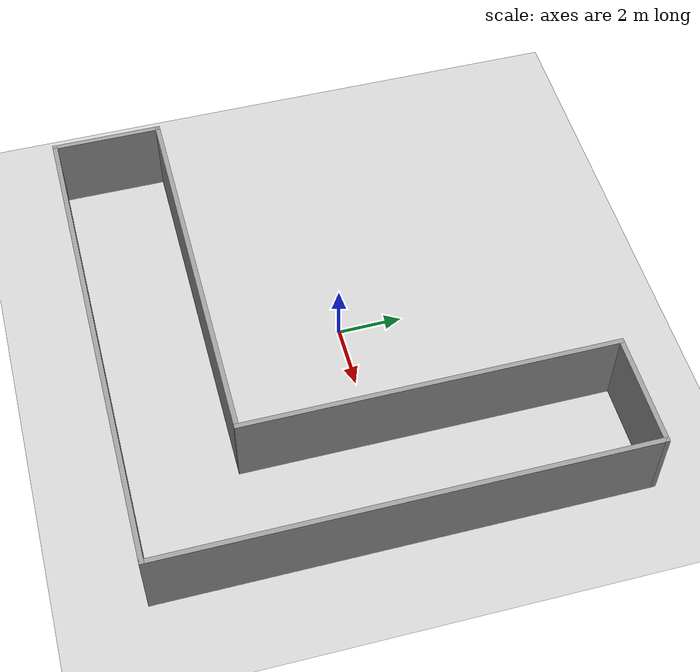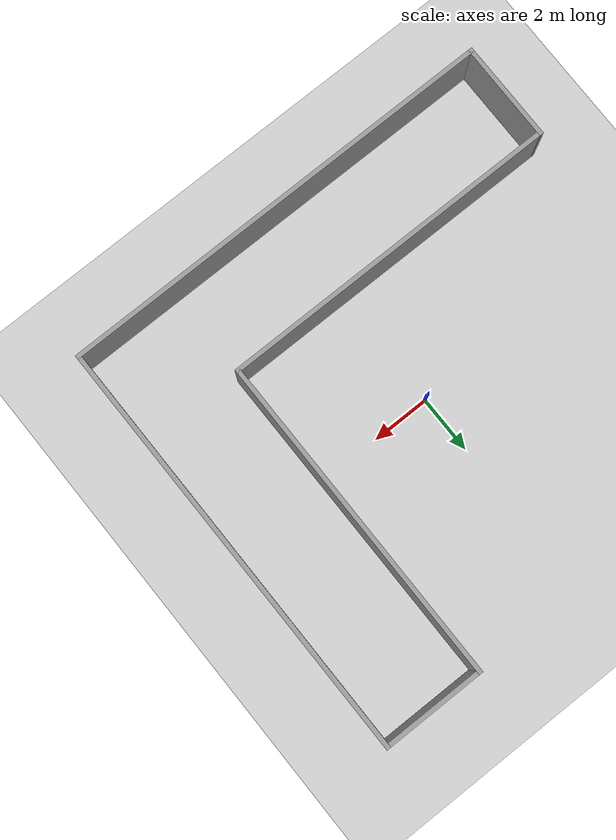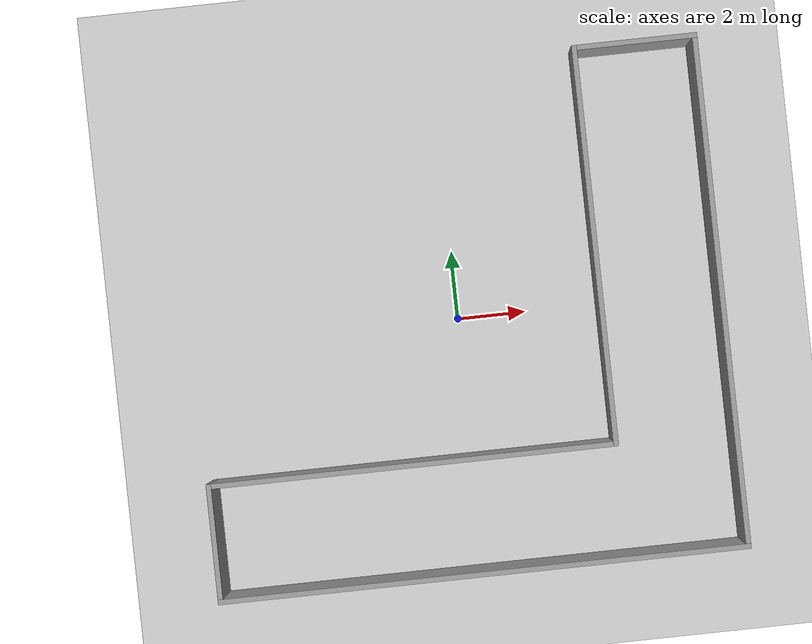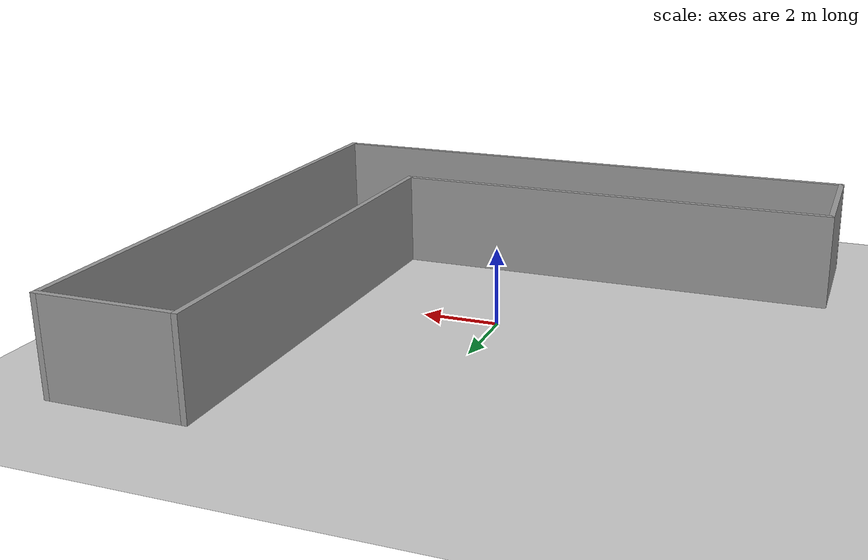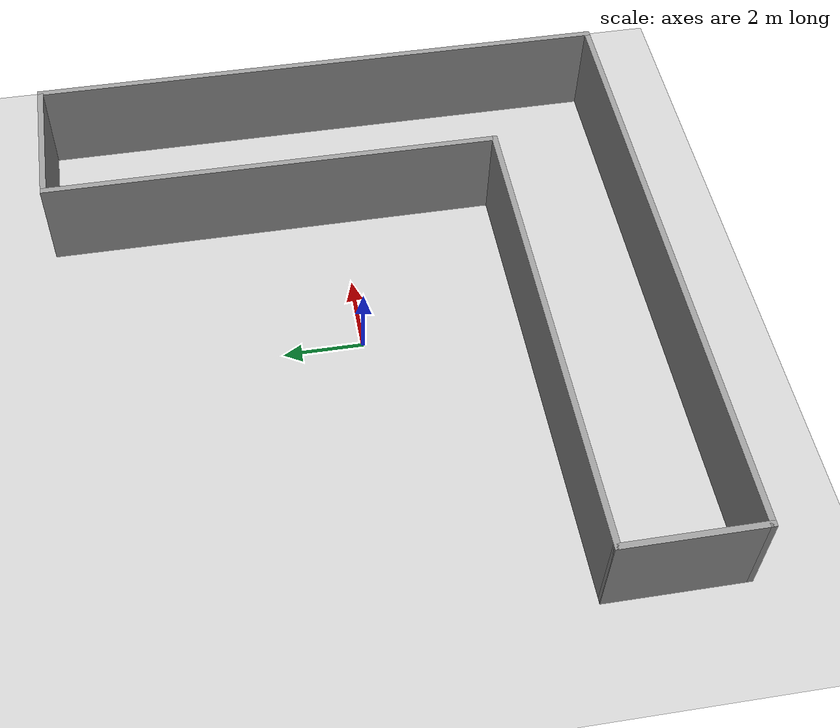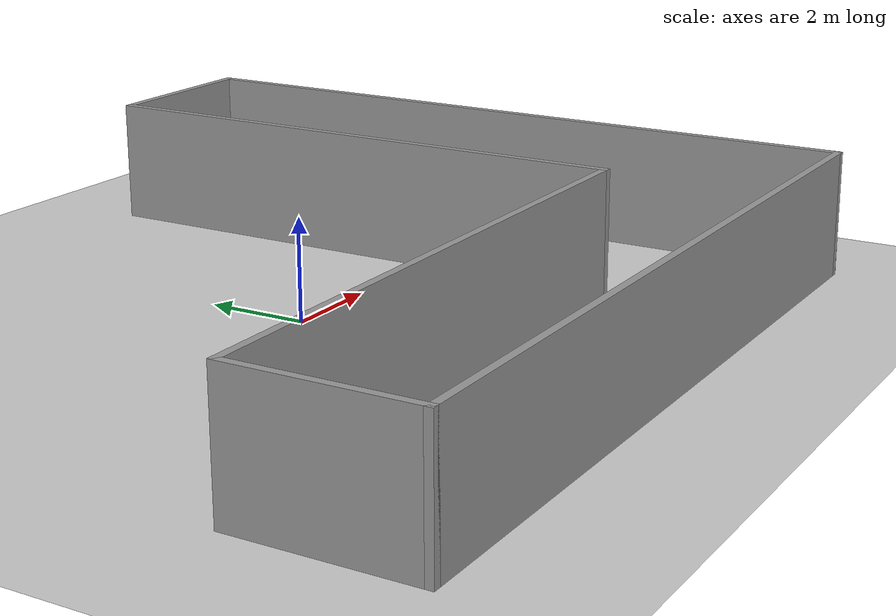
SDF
<sdf version="1.6">
 <world name="default">
  <light name="sun" type="directional">
   <pose>0 0 10 0 -0 0</pose>
   <diffuse>0.8 0.8 0.8 1</diffuse>
   <specular>0.2 0.2 0.2 1</specular>
   <attenuation>
    <range>1000</range>
    <constant>0.9</constant>
    <linear>0.01</linear>
    <quadratic>0.001</quadratic>
   </attenuation>
   <direction>-0.5 0.1 -0.9</direction>
  </light>
  <model name="ground_plane">
   <static>1</static>
   <link name="link">
    <collision name="collision">
     <geometry><plane><normal>0 0 1</normal><size>100 100</size></plane></geometry>
     <surface>
      <contact><collide_bitmask>65535</collide_bitmask></contact>
      <friction><ode><mu>100</mu><mu2>50</mu2></ode></friction>
     </surface>
    </collision>
    <visual name="visual">
     <cast_shadows>0</cast_shadows>
     <geometry><plane><normal>0 0 1</normal><size>100 100</size></plane></geometry>
     <material>
      <script><uri>file://media/materials/scripts/gazebo.material</uri><name>Gazebo/Grey</name></script>
     </material>
    </visual>
   </link>
  </model>
  <gravity>0 0 -9.8</gravity>
  <magnetic_field>6e-06 2.3e-05 -4.2e-05</magnetic_field>
  <atmosphere type="adiabatic"/>
  <physics name="default_physics" default="0" type="ode">
   <max_step_size>0.001</max_step_size>
   <real_time_factor>1</real_time_factor>
   <real_time_update_rate>1000</real_time_update_rate>
  </physics>
  <scene><ambient>0.4 0.4 0.4 1</ambient><background>0.7 0.7 0.7 1</background><shadows>1</shadows></scene>
  <audio><device>default</device></audio>
  <spherical_coordinates>
   <surface_model>EARTH_WGS84</surface_model>
   <latitude_deg>0</latitude_deg>
   <longitude_deg>0</longitude_deg>
   <elevation>0</elevation>
   <heading_deg>0</heading_deg>
  </spherical_coordinates>
  <model name="l_passage">
   <link name="Wall_0">
    <collision name="Wall_0_Collision">
     <geometry><box><size>15.5 0.15 2.5</size></box></geometry>
     <pose>0 0 1.25 0 -0 0</pose>
    </collision>
    <visual name="Wall_0_Visual">
     <pose>0 0 1.25 0 -0 0</pose>
     <geometry><box><size>15.5 0.15 2.5</size></box></geometry>
     <material>
      <script><uri>file://media/materials/scripts/gazebo.material</uri><name>Gazebo/Grey</name></script>
      <ambient>1 1 1 1</ambient>
     </material>
     <meta><layer>0</layer></meta>
    </visual>
    <pose>-0 -7.425 0 0 -0 0</pose>
   </link>
   <link name="Wall_11">
    <collision name="Wall_11_Collision">
     <geometry><box><size>11.65 0.15 2.5</size></box></geometry>
     <pose>0 0 1.25 0 -0 0</pose>
    </collision>
    <visual name="Wall_11_Visual">
     <pose>0 0 1.25 0 -0 0</pose>
     <geometry><box><size>11.65 0.15 2.5</size></box></geometry>
     <material>
      <script><uri>file://media/materials/scripts/gazebo.material</uri><name>Gazebo/Grey</name></script>
      <ambient>1 1 1 1</ambient>
     </material>
     <meta><layer>0</layer></meta>
    </visual>
    <pose>4.175 1.675 0 0 -0 1.5708</pose>
   </link>
   <link name="Wall_13">
    <collision name="Wall_13_Collision">
     <geometry><box><size>3.5 0.15 2.5</size></box></geometry>
     <pose>0 0 1.25 0 -0 0</pose>
    </collision>
    <visual name="Wall_13_Visual">
     <pose>0 0 1.25 0 -0 0</pose>
     <geometry><box><size>3.5 0.15 2.5</size></box></geometry>
     <material>
      <script><uri>file://media/materials/scripts/gazebo.material</uri><name>Gazebo/Grey</name></script>
      <ambient>1 1 1 1</ambient>
     </material>
     <meta><layer>0</layer></meta>
    </visual>
    <pose>6 7.425 0 0 -0 3.14159</pose>
   </link>
   <link name="Wall_2">
    <collision name="Wall_2_Collision">
     <geometry><box><size>3.5 0.15 2.5</size></box></geometry>
     <pose>0 0 1.25 0 -0 0</pose>
    </collision>
    <visual name="Wall_2_Visual">
     <pose>0 0 1.25 0 -0 0</pose>
     <geometry><box><size>3.5 0.15 2.5</size></box></geometry>
     <material>
      <script><uri>file://media/materials/scripts/gazebo.material</uri><name>Gazebo/Grey</name></script>
      <ambient>1 1 1 1</ambient>
     </material>
     <meta><layer>0</layer></meta>
    </visual>
    <pose>-7.675 -5.75 0 0 -0 1.5708</pose>
   </link>
   <link name="Wall_4">
    <collision name="Wall_4_Collision">
     <geometry><box><size>12 0.15 2.5</size></box></geometry>
     <pose>0 0 1.25 0 -0 0</pose>
    </collision>
    <visual name="Wall_4_Visual">
     <pose>0 0 1.25 0 -0 0</pose>
     <geometry><box><size>12 0.15 2.5</size></box></geometry>
     <material>
      <script><uri>file://media/materials/scripts/gazebo.material</uri><name>Gazebo/Grey</name></script>
      <ambient>1 1 1 1</ambient>
     </material>
     <meta><layer>0</layer></meta>
    </visual>
    <pose>-1.75 -4.075 0 0 -0 0</pose>
   </link>
   <link name="Wall_9">
    <collision name="Wall_9_Collision">
     <geometry><box><size>15 0.15 2.5</size></box></geometry>
     <pose>0 0 1.25 0 -0 0</pose>
    </collision>
    <visual name="Wall_9_Visual">
     <pose>0 0 1.25 0 -0 0</pose>
     <geometry><box><size>15 0.15 2.5</size></box></geometry>
     <material>
      <script><uri>file://media/materials/scripts/gazebo.material</uri><name>Gazebo/Grey</name></script>
      <ambient>1 1 1 1</ambient>
     </material>
     <meta><layer>0</layer></meta>
    </visual>
    <pose>7.675 0 0 0 -0 1.5708</pose>
   </link>
   <static>1</static>
  </model>
 </world>
</sdf>
